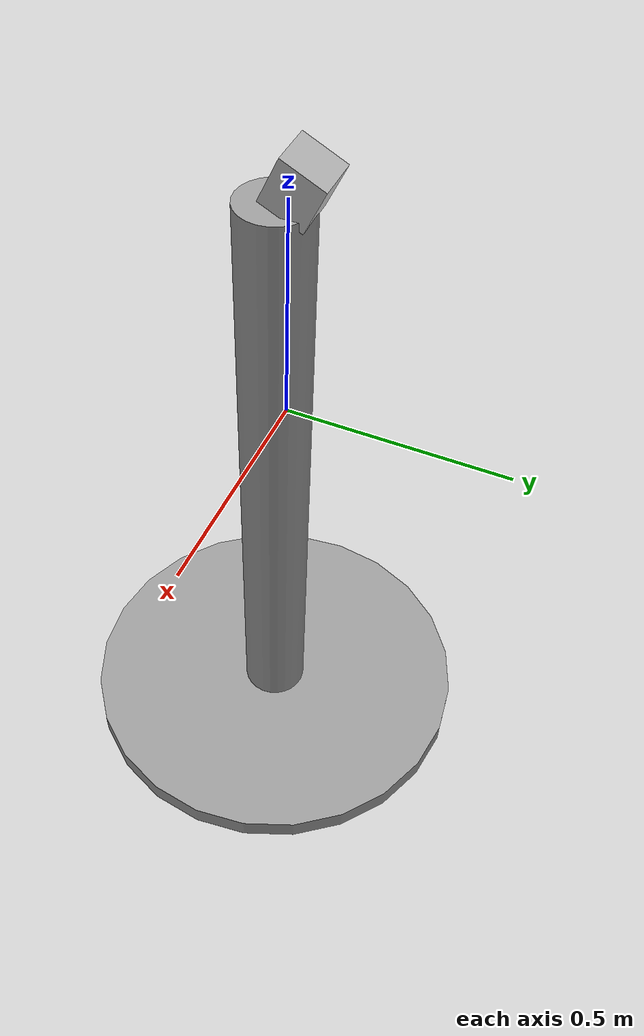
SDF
<?xml version='1.0'?>
<sdf version='1.7'>
  <model name='pole_cam'>
    <link name='link_0'>
      <inertial>
        <mass>0.0387268</mass>
        <inertia>
          <ixx>0.00721174</ixx>
          <ixy>0</ixy>
          <ixz>0</ixz>
          <iyy>0.00721174</iyy>
          <iyz>0</iyz>
          <izz>0.000126323</izz>
        </inertia>
        <pose>0 0 0 0 -0 0</pose>
      </inertial>
      <pose>0.002386 -0.025273 -0.255373 0 -0 0</pose>
      <self_collide>0</self_collide>
      <enable_wind>0</enable_wind>
      <kinematic>0</kinematic>
      <visual name='visual'>
        <pose>0 0 0 0 -0 0</pose>
        <geometry>
          <cylinder>
            <radius>0.0807696</radius>
            <length>1.48831</length>
          </cylinder>
        </geometry>
        <material>
          <lighting>1</lighting>
          <script>
            <uri>file://media/materials/scripts/gazebo.material</uri>
            <name>Gazebo/Grey</name>
          </script>
          <shader type='pixel'/>
          <emissive>0 0 0 1</emissive>
        </material>
        <transparency>0</transparency>
        <cast_shadows>1</cast_shadows>
      </visual>
      <collision name='collision'>
        <laser_retro>0</laser_retro>
        <max_contacts>10</max_contacts>
        <pose>0 0 0 0 -0 0</pose>
        <geometry>
          <cylinder>
            <radius>0.08077</radius>
            <length>1.48831</length>
          </cylinder>
        </geometry>
        <surface>
          <friction>
            <ode>
              <mu>1</mu>
              <mu2>1</mu2>
              <fdir1>0 0 0</fdir1>
              <slip1>0</slip1>
              <slip2>0</slip2>
            </ode>
            <torsional>
              <coefficient>1</coefficient>
              <patch_radius>0</patch_radius>
              <surface_radius>0</surface_radius>
              <use_patch_radius>1</use_patch_radius>
              <ode>
                <slip>0</slip>
              </ode>
            </torsional>
          </friction>
          <bounce>
            <restitution_coefficient>0</restitution_coefficient>
            <threshold>1e+06</threshold>
          </bounce>
          <contact>
            <collide_without_contact>0</collide_without_contact>
            <collide_without_contact_bitmask>1</collide_without_contact_bitmask>
            <collide_bitmask>1</collide_bitmask>
            <ode>
              <soft_cfm>0</soft_cfm>
              <soft_erp>0.2</soft_erp>
              <kp>1e+13</kp>
              <kd>1</kd>
              <max_vel>0.01</max_vel>
              <min_depth>0</min_depth>
            </ode>
            <bullet>
              <split_impulse>1</split_impulse>
              <split_impulse_penetration_threshold>-0.01</split_impulse_penetration_threshold>
              <soft_cfm>0</soft_cfm>
              <soft_erp>0.2</soft_erp>
              <kp>1e+13</kp>
              <kd>1</kd>
            </bullet>
          </contact>
        </surface>
      </collision>
    </link>
    <link name='link_0_0'>
      <inertial>
        <mass>0.0561422</mass>
        <inertia>
          <ixx>0.00352364</ixx>
          <ixy>0</ixy>
          <ixz>0</ixz>
          <iyy>0.00352364</iyy>
          <iyz>0</iyz>
          <izz>0.00701778</izz>
        </inertia>
        <pose>0 0 0 0 -0 0</pose>
      </inertial>
      <pose>-0.010867 -0.031907 -1.03391 0 -0 0</pose>
      <self_collide>0</self_collide>
      <enable_wind>0</enable_wind>
      <kinematic>0</kinematic>
      <visual name='visual'>
        <pose>0 0 0 0 -0 0</pose>
        <geometry>
          <cylinder>
            <radius>0.5</radius>
            <length>0.0561423</length>
          </cylinder>
        </geometry>
        <material>
          <lighting>1</lighting>
          <script>
            <uri>file://media/materials/scripts/gazebo.material</uri>
            <name>Gazebo/Grey</name>
          </script>
          <shader type='pixel'/>
          <emissive>0 0 0 1</emissive>
        </material>
        <transparency>0</transparency>
        <cast_shadows>1</cast_shadows>
      </visual>
      <collision name='collision'>
        <laser_retro>0</laser_retro>
        <max_contacts>10</max_contacts>
        <pose>0 0 0 0 -0 0</pose>
        <geometry>
          <cylinder>
            <radius>0.5</radius>
            <length>0.056142</length>
          </cylinder>
        </geometry>
        <surface>
          <friction>
            <ode>
              <mu>1</mu>
              <mu2>1</mu2>
              <fdir1>0 0 0</fdir1>
              <slip1>0</slip1>
              <slip2>0</slip2>
            </ode>
            <torsional>
              <coefficient>1</coefficient>
              <patch_radius>0</patch_radius>
              <surface_radius>0</surface_radius>
              <use_patch_radius>1</use_patch_radius>
              <ode>
                <slip>0</slip>
              </ode>
            </torsional>
          </friction>
          <bounce>
            <restitution_coefficient>0</restitution_coefficient>
            <threshold>1e+06</threshold>
          </bounce>
          <contact>
            <collide_without_contact>0</collide_without_contact>
            <collide_without_contact_bitmask>1</collide_without_contact_bitmask>
            <collide_bitmask>1</collide_bitmask>
            <ode>
              <soft_cfm>0</soft_cfm>
              <soft_erp>0.2</soft_erp>
              <kp>1e+13</kp>
              <kd>1</kd>
              <max_vel>0.01</max_vel>
              <min_depth>0</min_depth>
            </ode>
            <bullet>
              <split_impulse>1</split_impulse>
              <split_impulse_penetration_threshold>-0.01</split_impulse_penetration_threshold>
              <soft_cfm>0</soft_cfm>
              <soft_erp>0.2</soft_erp>
              <kp>1e+13</kp>
              <kd>1</kd>
            </bullet>
          </contact>
        </surface>
      </collision>
    </link>
    <model name='camera'>
      <pose>-0.002386 0.025275 0.53391 0 0.44153 1.5708</pose>
      <link name='link'>
        <inertial>
          <mass>0.1</mass>
          <inertia>
            <ixx>0.000166667</ixx>
            <iyy>0.000166667</iyy>
            <izz>0.000166667</izz>
            <ixy>0</ixy>
            <ixz>0</ixz>
            <iyz>0</iyz>
          </inertia>
          <pose>0 0 0 0 -0 0</pose>
        </inertial>
        <collision name='collision'>
          <geometry>
            <box>
              <size>0.1 0.1 0.1</size>
            </box>
          </geometry>
          <max_contacts>10</max_contacts>
          <surface>
            <contact>
              <ode/>
            </contact>
            <bounce/>
            <friction>
              <torsional>
                <ode/>
              </torsional>
              <ode/>
            </friction>
          </surface>
        </collision>
        <visual name='visual'>
          <geometry>
            <box>
              <size>0.1 0.1 0.1</size>
            </box>
          </geometry>
        </visual>
        <sensor name='camera' type='camera'>
          <camera>
            <horizontal_fov>1.047</horizontal_fov>
            <image>
              <width>320</width>
              <height>240</height>
            </image>
            <clip>
              <near>0.1</near>
              <far>100</far>
            </clip>
          </camera>
          <always_on>1</always_on>
          <update_rate>30</update_rate>
          <visualize>1</visualize>

        </sensor>
        <self_collide>0</self_collide>
        <enable_wind>0</enable_wind>
        <kinematic>0</kinematic>
      </link>
    </model>
    <joint name='link_0_JOINT_0' type='fixed'>
      <parent>link_0_0</parent>
      <child>link_0</child>
      <pose>0 0 0 0 -0 0</pose>
      <physics>
        <ode>
          <limit>
            <cfm>0</cfm>
            <erp>0.2</erp>
          </limit>
          <suspension>
            <cfm>0</cfm>
            <erp>0.2</erp>
          </suspension>
        </ode>
      </physics>
    </joint>
    <static>0</static>
    <allow_auto_disable>1</allow_auto_disable>
  </model>
</sdf>
